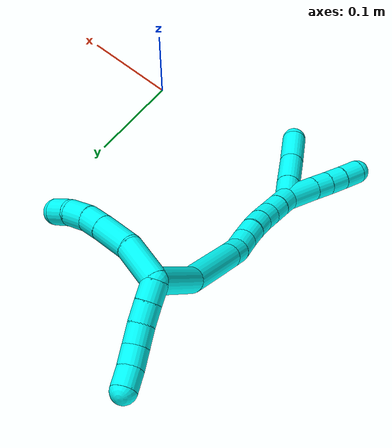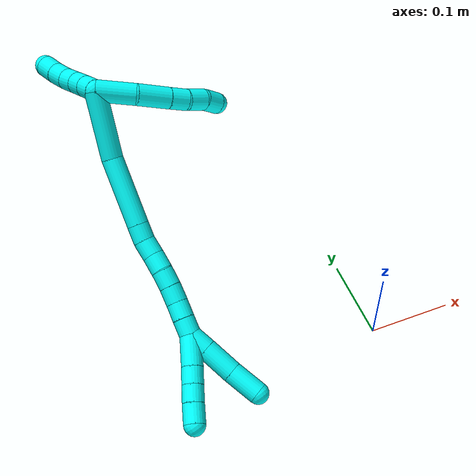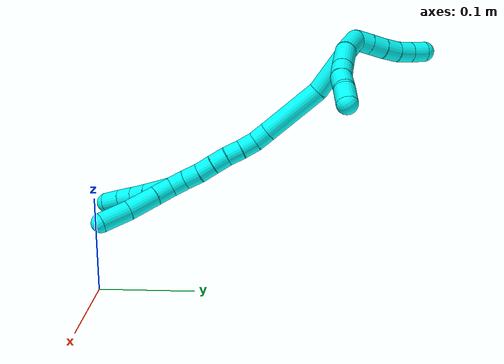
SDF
<sdf version="1.7">
 <world name="default">
  <model name="3">
   <static>0</static>
   <link name="3">
    <collision name="collision-cylinder-e_1_2_8">
     <pose>0.008054 0.016018 -0.013843 -2.28349 0.363534 -0.764048</pose>
     <geometry><cylinder><radius>0.0125</radius><length>0.045303</length></cylinder></geometry>
     <surface>
      <friction><ode><mu>1.16</mu><mu2>1.16</mu2><slip1>0</slip1><slip2>0</slip2></ode></friction>
      <contact><ode><kp>1e+06</kp><kd>1</kd><max_vel>0</max_vel><min_depth>0.001</min_depth></ode></contact>
     </surface>
    </collision>
    <visual name="visual-cylinder-e_1_2_8">
     <pose>0.008054 0.016018 -0.013843 -2.28349 0.363534 -0.764048</pose>
     <geometry><cylinder><radius>0.0125</radius><length>0.045303</length></cylinder></geometry>
     <material><ambient>0.003922 1 0.996078 1</ambient></material>
    </visual>
    <collision name="collision-cylinder-e_2_8_9">
     <pose>0.018873 0.048039 -0.03843 -2.16202 0.142433 -0.266045</pose>
     <geometry><cylinder><radius>0.0125</radius><length>0.038943</length></cylinder></geometry>
     <surface>
      <friction><ode><mu>1.16</mu><mu2>1.16</mu2><slip1>0</slip1><slip2>0</slip2></ode></friction>
      <contact><ode><kp>1e+06</kp><kd>1</kd><max_vel>0</max_vel><min_depth>0.001</min_depth></ode></contact>
     </surface>
    </collision>
    <visual name="visual-cylinder-e_2_8_9">
     <pose>0.018873 0.048039 -0.03843 -2.16202 0.142433 -0.266045</pose>
     <geometry><cylinder><radius>0.0125</radius><length>0.038943</length></cylinder></geometry>
     <material><ambient>0.003922 1 0.996078 1</ambient></material>
    </visual>
    <collision name="collision-cylinder-e_3_9_10">
     <pose>0.02296 0.073054 -0.054865 -2.1341 0.123531 -0.223472</pose>
     <geometry><cylinder><radius>0.0125</radius><length>0.021482</length></cylinder></geometry>
     <surface>
      <friction><ode><mu>1.16</mu><mu2>1.16</mu2><slip1>0</slip1><slip2>0</slip2></ode></friction>
      <contact><ode><kp>1e+06</kp><kd>1</kd><max_vel>0</max_vel><min_depth>0.001</min_depth></ode></contact>
     </surface>
    </collision>
    <visual name="visual-cylinder-e_3_9_10">
     <pose>0.02296 0.073054 -0.054865 -2.1341 0.123531 -0.223472</pose>
     <geometry><cylinder><radius>0.0125</radius><length>0.021482</length></cylinder></geometry>
     <material><ambient>0.003922 1 0.996078 1</ambient></material>
    </visual>
    <collision name="collision-cylinder-e_4_10_11">
     <pose>0.024489 0.092561 -0.064796 -1.95474 0.018099 -0.026831</pose>
     <geometry><cylinder><radius>0.0125</radius><length>0.022641</length></cylinder></geometry>
     <surface>
      <friction><ode><mu>1.16</mu><mu2>1.16</mu2><slip1>0</slip1><slip2>0</slip2></ode></friction>
      <contact><ode><kp>1e+06</kp><kd>1</kd><max_vel>0</max_vel><min_depth>0.001</min_depth></ode></contact>
     </surface>
    </collision>
    <visual name="visual-cylinder-e_4_10_11">
     <pose>0.024489 0.092561 -0.064796 -1.95474 0.018099 -0.026831</pose>
     <geometry><cylinder><radius>0.0125</radius><length>0.022641</length></cylinder></geometry>
     <material><ambient>0.003922 1 0.996078 1</ambient></material>
    </visual>
    <collision name="collision-cylinder-e_5_11_6">
     <pose>0.022015 0.112337 -0.0739 -2.05356 -0.250281 0.410084</pose>
     <geometry><cylinder><radius>0.0125</radius><length>0.02163</length></cylinder></geometry>
     <surface>
      <friction><ode><mu>1.16</mu><mu2>1.16</mu2><slip1>0</slip1><slip2>0</slip2></ode></friction>
      <contact><ode><kp>1e+06</kp><kd>1</kd><max_vel>0</max_vel><min_depth>0.001</min_depth></ode></contact>
     </surface>
    </collision>
    <visual name="visual-cylinder-e_5_11_6">
     <pose>0.022015 0.112337 -0.0739 -2.05356 -0.250281 0.410084</pose>
     <geometry><cylinder><radius>0.0125</radius><length>0.02163</length></cylinder></geometry>
     <material><ambient>0.003922 1 0.996078 1</ambient></material>
    </visual>
    <collision name="collision-cylinder-e_1_2_12">
     <pose>-0.007421 0.001773 0.006464 -0.267683 -0.836156 0.119496</pose>
     <geometry><cylinder><radius>0.0125</radius><length>0.02</length></cylinder></geometry>
     <surface>
      <friction><ode><mu>1.16</mu><mu2>1.16</mu2><slip1>0</slip1><slip2>0</slip2></ode></friction>
      <contact><ode><kp>1e+06</kp><kd>1</kd><max_vel>0</max_vel><min_depth>0.001</min_depth></ode></contact>
     </surface>
    </collision>
    <visual name="visual-cylinder-e_1_2_12">
     <pose>-0.007421 0.001773 0.006464 -0.267683 -0.836156 0.119496</pose>
     <geometry><cylinder><radius>0.0125</radius><length>0.02</length></cylinder></geometry>
     <material><ambient>0.003922 1 0.996078 1</ambient></material>
    </visual>
    <collision name="collision-cylinder-e_2_12_13">
     <pose>-0.022366 0.005166 0.019313 -0.248456 -0.851759 0.113173</pose>
     <geometry><cylinder><radius>0.0125</radius><length>0.02</length></cylinder></geometry>
     <surface>
      <friction><ode><mu>1.16</mu><mu2>1.16</mu2><slip1>0</slip1><slip2>0</slip2></ode></friction>
      <contact><ode><kp>1e+06</kp><kd>1</kd><max_vel>0</max_vel><min_depth>0.001</min_depth></ode></contact>
     </surface>
    </collision>
    <visual name="visual-cylinder-e_2_12_13">
     <pose>-0.022366 0.005166 0.019313 -0.248456 -0.851759 0.113173</pose>
     <geometry><cylinder><radius>0.0125</radius><length>0.02</length></cylinder></geometry>
     <material><ambient>0.003922 1 0.996078 1</ambient></material>
    </visual>
    <collision name="collision-cylinder-e_3_13_14">
     <pose>-0.037202 0.007633 0.032467 -0.124632 -0.820062 0.054231</pose>
     <geometry><cylinder><radius>0.0125</radius><length>0.02</length></cylinder></geometry>
     <surface>
      <friction><ode><mu>1.16</mu><mu2>1.16</mu2><slip1>0</slip1><slip2>0</slip2></ode></friction>
      <contact><ode><kp>1e+06</kp><kd>1</kd><max_vel>0</max_vel><min_depth>0.001</min_depth></ode></contact>
     </surface>
    </collision>
    <visual name="visual-cylinder-e_3_13_14">
     <pose>-0.037202 0.007633 0.032467 -0.124632 -0.820062 0.054231</pose>
     <geometry><cylinder><radius>0.0125</radius><length>0.02</length></cylinder></geometry>
     <material><ambient>0.003922 1 0.996078 1</ambient></material>
    </visual>
    <collision name="collision-cylinder-e_4_14_15">
     <pose>-0.050663 0.008745 0.047117 -0.033412 -0.662266 0.011488</pose>
     <geometry><cylinder><radius>0.0125</radius><length>0.02</length></cylinder></geometry>
     <surface>
      <friction><ode><mu>1.16</mu><mu2>1.16</mu2><slip1>0</slip1><slip2>0</slip2></ode></friction>
      <contact><ode><kp>1e+06</kp><kd>1</kd><max_vel>0</max_vel><min_depth>0.001</min_depth></ode></contact>
     </surface>
    </collision>
    <visual name="visual-cylinder-e_4_14_15">
     <pose>-0.050663 0.008745 0.047117 -0.033412 -0.662266 0.011488</pose>
     <geometry><cylinder><radius>0.0125</radius><length>0.02</length></cylinder></geometry>
     <material><ambient>0.003922 1 0.996078 1</ambient></material>
    </visual>
    <collision name="collision-cylinder-e_5_15_5">
     <pose>-0.062304 0.009572 0.063336 -0.067501 -0.581411 0.020202</pose>
     <geometry><cylinder><radius>0.0125</radius><length>0.02</length></cylinder></geometry>
     <surface>
      <friction><ode><mu>1.16</mu><mu2>1.16</mu2><slip1>0</slip1><slip2>0</slip2></ode></friction>
      <contact><ode><kp>1e+06</kp><kd>1</kd><max_vel>0</max_vel><min_depth>0.001</min_depth></ode></contact>
     </surface>
    </collision>
    <visual name="visual-cylinder-e_5_15_5">
     <pose>-0.062304 0.009572 0.063336 -0.067501 -0.581411 0.020202</pose>
     <geometry><cylinder><radius>0.0125</radius><length>0.02</length></cylinder></geometry>
     <material><ambient>0.003922 1 0.996078 1</ambient></material>
    </visual>
    <collision name="collision-cylinder-e_1_2_16">
     <pose>-0.017835 -0.004484 -0.034559 3.01255 -0.473033 -2.61779</pose>
     <geometry><cylinder><radius>0.0125</radius><length>0.078295</length></cylinder></geometry>
     <surface>
      <friction><ode><mu>1.16</mu><mu2>1.16</mu2><slip1>0</slip1><slip2>0</slip2></ode></friction>
      <contact><ode><kp>1e+06</kp><kd>1</kd><max_vel>0</max_vel><min_depth>0.001</min_depth></ode></contact>
     </surface>
    </collision>
    <visual name="visual-cylinder-e_1_2_16">
     <pose>-0.017835 -0.004484 -0.034559 3.01255 -0.473033 -2.61779</pose>
     <geometry><cylinder><radius>0.0125</radius><length>0.078295</length></cylinder></geometry>
     <material><ambient>0.003922 1 0.996078 1</ambient></material>
    </visual>
    <collision name="collision-cylinder-e_2_16_17">
     <pose>-0.04311 -0.015358 -0.108378 2.98027 -0.184913 -1.70756</pose>
     <geometry><cylinder><radius>0.0125</radius><length>0.080933</length></cylinder></geometry>
     <surface>
      <friction><ode><mu>1.16</mu><mu2>1.16</mu2><slip1>0</slip1><slip2>0</slip2></ode></friction>
      <contact><ode><kp>1e+06</kp><kd>1</kd><max_vel>0</max_vel><min_depth>0.001</min_depth></ode></contact>
     </surface>
    </collision>
    <visual name="visual-cylinder-e_2_16_17">
     <pose>-0.04311 -0.015358 -0.108378 2.98027 -0.184913 -1.70756</pose>
     <geometry><cylinder><radius>0.0125</radius><length>0.080933</length></cylinder></geometry>
     <material><ambient>0.003922 1 0.996078 1</ambient></material>
    </visual>
    <collision name="collision-cylinder-e_3_17_18">
     <pose>-0.052283 -0.023305 -0.157405 2.9834 -0.173421 -1.66298</pose>
     <geometry><cylinder><radius>0.0125</radius><length>0.020081</length></cylinder></geometry>
     <surface>
      <friction><ode><mu>1.16</mu><mu2>1.16</mu2><slip1>0</slip1><slip2>0</slip2></ode></friction>
      <contact><ode><kp>1e+06</kp><kd>1</kd><max_vel>0</max_vel><min_depth>0.001</min_depth></ode></contact>
     </surface>
    </collision>
    <visual name="visual-cylinder-e_3_17_18">
     <pose>-0.052283 -0.023305 -0.157405 2.9834 -0.173421 -1.66298</pose>
     <geometry><cylinder><radius>0.0125</radius><length>0.020081</length></cylinder></geometry>
     <material><ambient>0.003922 1 0.996078 1</ambient></material>
    </visual>
    <collision name="collision-cylinder-e_4_18_19">
     <pose>-0.053418 -0.025858 -0.17723 3.04291 0.059036 1.07781</pose>
     <geometry><cylinder><radius>0.0125</radius><length>0.020252</length></cylinder></geometry>
     <surface>
      <friction><ode><mu>1.16</mu><mu2>1.16</mu2><slip1>0</slip1><slip2>0</slip2></ode></friction>
      <contact><ode><kp>1e+06</kp><kd>1</kd><max_vel>0</max_vel><min_depth>0.001</min_depth></ode></contact>
     </surface>
    </collision>
    <visual name="visual-cylinder-e_4_18_19">
     <pose>-0.053418 -0.025858 -0.17723 3.04291 0.059036 1.07781</pose>
     <geometry><cylinder><radius>0.0125</radius><length>0.020252</length></cylinder></geometry>
     <material><ambient>0.003922 1 0.996078 1</ambient></material>
    </visual>
    <collision name="collision-cylinder-e_5_19_20">
     <pose>-0.051835 -0.028482 -0.197149 2.97802 0.098348 1.08143</pose>
     <geometry><cylinder><radius>0.0125</radius><length>0.020082</length></cylinder></geometry>
     <surface>
      <friction><ode><mu>1.16</mu><mu2>1.16</mu2><slip1>0</slip1><slip2>0</slip2></ode></friction>
      <contact><ode><kp>1e+06</kp><kd>1</kd><max_vel>0</max_vel><min_depth>0.001</min_depth></ode></contact>
     </surface>
    </collision>
    <visual name="visual-cylinder-e_5_19_20">
     <pose>-0.051835 -0.028482 -0.197149 2.97802 0.098348 1.08143</pose>
     <geometry><cylinder><radius>0.0125</radius><length>0.020082</length></cylinder></geometry>
     <material><ambient>0.003922 1 0.996078 1</ambient></material>
    </visual>
    <collision name="collision-cylinder-e_6_20_21">
     <pose>-0.050965 -0.031586 -0.216967 2.99431 -0.011533 -0.156013</pose>
     <geometry><cylinder><radius>0.0125</radius><length>0.020137</length></cylinder></geometry>
     <surface>
      <friction><ode><mu>1.16</mu><mu2>1.16</mu2><slip1>0</slip1><slip2>0</slip2></ode></friction>
      <contact><ode><kp>1e+06</kp><kd>1</kd><max_vel>0</max_vel><min_depth>0.001</min_depth></ode></contact>
     </surface>
    </collision>
    <visual name="visual-cylinder-e_6_20_21">
     <pose>-0.050965 -0.031586 -0.216967 2.99431 -0.011533 -0.156013</pose>
     <geometry><cylinder><radius>0.0125</radius><length>0.020137</length></cylinder></geometry>
     <material><ambient>0.003922 1 0.996078 1</ambient></material>
    </visual>
    <collision name="collision-cylinder-e_7_21_22">
     <pose>-0.051655 -0.035014 -0.236786 2.94631 -0.05705 -0.566893</pose>
     <geometry><cylinder><radius>0.0125</radius><length>0.020135</length></cylinder></geometry>
     <surface>
      <friction><ode><mu>1.16</mu><mu2>1.16</mu2><slip1>0</slip1><slip2>0</slip2></ode></friction>
      <contact><ode><kp>1e+06</kp><kd>1</kd><max_vel>0</max_vel><min_depth>0.001</min_depth></ode></contact>
     </surface>
    </collision>
    <visual name="visual-cylinder-e_7_21_22">
     <pose>-0.051655 -0.035014 -0.236786 2.94631 -0.05705 -0.566893</pose>
     <geometry><cylinder><radius>0.0125</radius><length>0.020135</length></cylinder></geometry>
     <material><ambient>0.003922 1 0.996078 1</ambient></material>
    </visual>
    <collision name="collision-cylinder-e_8_22_23">
     <pose>-0.051974 -0.039714 -0.25628 2.86359 0.025463 0.181518</pose>
     <geometry><cylinder><radius>0.0125</radius><length>0.020043</length></cylinder></geometry>
     <surface>
      <friction><ode><mu>1.16</mu><mu2>1.16</mu2><slip1>0</slip1><slip2>0</slip2></ode></friction>
      <contact><ode><kp>1e+06</kp><kd>1</kd><max_vel>0</max_vel><min_depth>0.001</min_depth></ode></contact>
     </surface>
    </collision>
    <visual name="visual-cylinder-e_8_22_23">
     <pose>-0.051974 -0.039714 -0.25628 2.86359 0.025463 0.181518</pose>
     <geometry><cylinder><radius>0.0125</radius><length>0.020043</length></cylinder></geometry>
     <material><ambient>0.003922 1 0.996078 1</ambient></material>
    </visual>
    <collision name="collision-cylinder-e_9_23_1">
     <pose>-0.051743 -0.044854 -0.275645 2.90063 -0.002416 -0.019958</pose>
     <geometry><cylinder><radius>0.0125</radius><length>0.020041</length></cylinder></geometry>
     <surface>
      <friction><ode><mu>1.16</mu><mu2>1.16</mu2><slip1>0</slip1><slip2>0</slip2></ode></friction>
      <contact><ode><kp>1e+06</kp><kd>1</kd><max_vel>0</max_vel><min_depth>0.001</min_depth></ode></contact>
     </surface>
    </collision>
    <visual name="visual-cylinder-e_9_23_1">
     <pose>-0.051743 -0.044854 -0.275645 2.90063 -0.002416 -0.019958</pose>
     <geometry><cylinder><radius>0.0125</radius><length>0.020041</length></cylinder></geometry>
     <material><ambient>0.003922 1 0.996078 1</ambient></material>
    </visual>
    <collision name="collision-cylinder-e_1_1_24">
     <pose>-0.048923 -0.045504 -0.296912 -2.99175 0.239122 -2.02467</pose>
     <geometry><cylinder><radius>0.0125</radius><length>0.024017</length></cylinder></geometry>
     <surface>
      <friction><ode><mu>1.16</mu><mu2>1.16</mu2><slip1>0</slip1><slip2>0</slip2></ode></friction>
      <contact><ode><kp>1e+06</kp><kd>1</kd><max_vel>0</max_vel><min_depth>0.001</min_depth></ode></contact>
     </surface>
    </collision>
    <visual name="visual-cylinder-e_1_1_24">
     <pose>-0.048923 -0.045504 -0.296912 -2.99175 0.239122 -2.02467</pose>
     <geometry><cylinder><radius>0.0125</radius><length>0.024017</length></cylinder></geometry>
     <material><ambient>0.003922 1 0.996078 1</ambient></material>
    </visual>
    <collision name="collision-cylinder-e_2_24_25">
     <pose>-0.041653 -0.041245 -0.327067 -3.00719 0.231353 -2.09162</pose>
     <geometry><cylinder><radius>0.0125</radius><length>0.038606</length></cylinder></geometry>
     <surface>
      <friction><ode><mu>1.16</mu><mu2>1.16</mu2><slip1>0</slip1><slip2>0</slip2></ode></friction>
      <contact><ode><kp>1e+06</kp><kd>1</kd><max_vel>0</max_vel><min_depth>0.001</min_depth></ode></contact>
     </surface>
    </collision>
    <visual name="visual-cylinder-e_2_24_25">
     <pose>-0.041653 -0.041245 -0.327067 -3.00719 0.231353 -2.09162</pose>
     <geometry><cylinder><radius>0.0125</radius><length>0.038606</length></cylinder></geometry>
     <material><ambient>0.003922 1 0.996078 1</ambient></material>
    </visual>
    <collision name="collision-cylinder-e_3_25_4">
     <pose>-0.031244 -0.036328 -0.363228 -3.00565 0.325874 -2.35638</pose>
     <geometry><cylinder><radius>0.0125</radius><length>0.037377</length></cylinder></geometry>
     <surface>
      <friction><ode><mu>1.16</mu><mu2>1.16</mu2><slip1>0</slip1><slip2>0</slip2></ode></friction>
      <contact><ode><kp>1e+06</kp><kd>1</kd><max_vel>0</max_vel><min_depth>0.001</min_depth></ode></contact>
     </surface>
    </collision>
    <visual name="visual-cylinder-e_3_25_4">
     <pose>-0.031244 -0.036328 -0.363228 -3.00565 0.325874 -2.35638</pose>
     <geometry><cylinder><radius>0.0125</radius><length>0.037377</length></cylinder></geometry>
     <material><ambient>0.003922 1 0.996078 1</ambient></material>
    </visual>
    <collision name="collision-cylinder-e_1_1_26">
     <pose>-0.05216 -0.05784 -0.300248 2.52263 -0.021477 -0.067144</pose>
     <geometry><cylinder><radius>0.0125</radius><length>0.036529</length></cylinder></geometry>
     <surface>
      <friction><ode><mu>1.16</mu><mu2>1.16</mu2><slip1>0</slip1><slip2>0</slip2></ode></friction>
      <contact><ode><kp>1e+06</kp><kd>1</kd><max_vel>0</max_vel><min_depth>0.001</min_depth></ode></contact>
     </surface>
    </collision>
    <visual name="visual-cylinder-e_1_1_26">
     <pose>-0.05216 -0.05784 -0.300248 2.52263 -0.021477 -0.067144</pose>
     <geometry><cylinder><radius>0.0125</radius><length>0.036529</length></cylinder></geometry>
     <material><ambient>0.003922 1 0.996078 1</ambient></material>
    </visual>
    <collision name="collision-cylinder-e_2_26_27">
     <pose>-0.052727 -0.074579 -0.323055 2.48268 -0.017484 -0.051125</pose>
     <geometry><cylinder><radius>0.0125</radius><length>0.020073</length></cylinder></geometry>
     <surface>
      <friction><ode><mu>1.16</mu><mu2>1.16</mu2><slip1>0</slip1><slip2>0</slip2></ode></friction>
      <contact><ode><kp>1e+06</kp><kd>1</kd><max_vel>0</max_vel><min_depth>0.001</min_depth></ode></contact>
     </surface>
    </collision>
    <visual name="visual-cylinder-e_2_26_27">
     <pose>-0.052727 -0.074579 -0.323055 2.48268 -0.017484 -0.051125</pose>
     <geometry><cylinder><radius>0.0125</radius><length>0.020073</length></cylinder></geometry>
     <material><ambient>0.003922 1 0.996078 1</ambient></material>
    </visual>
    <collision name="collision-cylinder-e_3_27_28">
     <pose>-0.052862 -0.086879 -0.338928 2.48198 0.004072 0.011896</pose>
     <geometry><cylinder><radius>0.0125</radius><length>0.020092</length></cylinder></geometry>
     <surface>
      <friction><ode><mu>1.16</mu><mu2>1.16</mu2><slip1>0</slip1><slip2>0</slip2></ode></friction>
      <contact><ode><kp>1e+06</kp><kd>1</kd><max_vel>0</max_vel><min_depth>0.001</min_depth></ode></contact>
     </surface>
    </collision>
    <visual name="visual-cylinder-e_3_27_28">
     <pose>-0.052862 -0.086879 -0.338928 2.48198 0.004072 0.011896</pose>
     <geometry><cylinder><radius>0.0125</radius><length>0.020092</length></cylinder></geometry>
     <material><ambient>0.003922 1 0.996078 1</ambient></material>
    </visual>
    <collision name="collision-cylinder-e_4_28_3">
     <pose>-0.05278 -0.099867 -0.356307 2.51514 0.003498 0.010801</pose>
     <geometry><cylinder><radius>0.0125</radius><length>0.023306</length></cylinder></geometry>
     <surface>
      <friction><ode><mu>1.16</mu><mu2>1.16</mu2><slip1>0</slip1><slip2>0</slip2></ode></friction>
      <contact><ode><kp>1e+06</kp><kd>1</kd><max_vel>0</max_vel><min_depth>0.001</min_depth></ode></contact>
     </surface>
    </collision>
    <visual name="visual-cylinder-e_4_28_3">
     <pose>-0.05278 -0.099867 -0.356307 2.51514 0.003498 0.010801</pose>
     <geometry><cylinder><radius>0.0125</radius><length>0.023306</length></cylinder></geometry>
     <material><ambient>0.003922 1 0.996078 1</ambient></material>
    </visual>
    <collision name="collision-sphere-3">
     <pose>-0.05274 -0.106699 -0.365747 0 -0 0</pose>
     <geometry><sphere><radius>0.0125</radius></sphere></geometry>
     <surface>
      <friction><ode><mu>1.16</mu><mu2>1.16</mu2><slip1>0</slip1><slip2>0</slip2></ode></friction>
      <contact><ode><kp>1e+06</kp><kd>1</kd><max_vel>0</max_vel><min_depth>0.001</min_depth></ode></contact>
     </surface>
    </collision>
    <visual name="visual-sphere-3">
     <pose>-0.05274 -0.106699 -0.365747 0 -0 0</pose>
     <geometry><sphere><radius>0.0125</radius></sphere></geometry>
     <material><ambient>0.003922 1 0.996078 1</ambient></material>
    </visual>
    <collision name="collision-sphere-28">
     <pose>-0.052821 -0.093035 -0.346867 0 -0 0</pose>
     <geometry><sphere><radius>0.0125</radius></sphere></geometry>
     <surface>
      <friction><ode><mu>1.16</mu><mu2>1.16</mu2><slip1>0</slip1><slip2>0</slip2></ode></friction>
      <contact><ode><kp>1e+06</kp><kd>1</kd><max_vel>0</max_vel><min_depth>0.001</min_depth></ode></contact>
     </surface>
    </collision>
    <visual name="visual-sphere-28">
     <pose>-0.052821 -0.093035 -0.346867 0 -0 0</pose>
     <geometry><sphere><radius>0.0125</radius></sphere></geometry>
     <material><ambient>0.003922 1 0.996078 1</ambient></material>
    </visual>
    <collision name="collision-sphere-27">
     <pose>-0.052903 -0.080723 -0.33099 0 -0 0</pose>
     <geometry><sphere><radius>0.0125</radius></sphere></geometry>
     <surface>
      <friction><ode><mu>1.16</mu><mu2>1.16</mu2><slip1>0</slip1><slip2>0</slip2></ode></friction>
      <contact><ode><kp>1e+06</kp><kd>1</kd><max_vel>0</max_vel><min_depth>0.001</min_depth></ode></contact>
     </surface>
    </collision>
    <visual name="visual-sphere-27">
     <pose>-0.052903 -0.080723 -0.33099 0 -0 0</pose>
     <geometry><sphere><radius>0.0125</radius></sphere></geometry>
     <material><ambient>0.003922 1 0.996078 1</ambient></material>
    </visual>
    <collision name="collision-sphere-26">
     <pose>-0.052552 -0.068435 -0.315121 0 -0 0</pose>
     <geometry><sphere><radius>0.0125</radius></sphere></geometry>
     <surface>
      <friction><ode><mu>1.16</mu><mu2>1.16</mu2><slip1>0</slip1><slip2>0</slip2></ode></friction>
      <contact><ode><kp>1e+06</kp><kd>1</kd><max_vel>0</max_vel><min_depth>0.001</min_depth></ode></contact>
     </surface>
    </collision>
    <visual name="visual-sphere-26">
     <pose>-0.052552 -0.068435 -0.315121 0 -0 0</pose>
     <geometry><sphere><radius>0.0125</radius></sphere></geometry>
     <material><ambient>0.003922 1 0.996078 1</ambient></material>
    </visual>
    <collision name="collision-sphere-4">
     <pose>-0.025261 -0.033928 -0.38077 0 -0 0</pose>
     <geometry><sphere><radius>0.0125</radius></sphere></geometry>
     <surface>
      <friction><ode><mu>1.16</mu><mu2>1.16</mu2><slip1>0</slip1><slip2>0</slip2></ode></friction>
      <contact><ode><kp>1e+06</kp><kd>1</kd><max_vel>0</max_vel><min_depth>0.001</min_depth></ode></contact>
     </surface>
    </collision>
    <visual name="visual-sphere-4">
     <pose>-0.025261 -0.033928 -0.38077 0 -0 0</pose>
     <geometry><sphere><radius>0.0125</radius></sphere></geometry>
     <material><ambient>0.003922 1 0.996078 1</ambient></material>
    </visual>
    <collision name="collision-sphere-25">
     <pose>-0.037227 -0.038727 -0.345687 0 -0 0</pose>
     <geometry><sphere><radius>0.0125</radius></sphere></geometry>
     <surface>
      <friction><ode><mu>1.16</mu><mu2>1.16</mu2><slip1>0</slip1><slip2>0</slip2></ode></friction>
      <contact><ode><kp>1e+06</kp><kd>1</kd><max_vel>0</max_vel><min_depth>0.001</min_depth></ode></contact>
     </surface>
    </collision>
    <visual name="visual-sphere-25">
     <pose>-0.037227 -0.038727 -0.345687 0 -0 0</pose>
     <geometry><sphere><radius>0.0125</radius></sphere></geometry>
     <material><ambient>0.003922 1 0.996078 1</ambient></material>
    </visual>
    <collision name="collision-sphere-24">
     <pose>-0.046079 -0.043762 -0.308448 0 -0 0</pose>
     <geometry><sphere><radius>0.0125</radius></sphere></geometry>
     <surface>
      <friction><ode><mu>1.16</mu><mu2>1.16</mu2><slip1>0</slip1><slip2>0</slip2></ode></friction>
      <contact><ode><kp>1e+06</kp><kd>1</kd><max_vel>0</max_vel><min_depth>0.001</min_depth></ode></contact>
     </surface>
    </collision>
    <visual name="visual-sphere-24">
     <pose>-0.046079 -0.043762 -0.308448 0 -0 0</pose>
     <geometry><sphere><radius>0.0125</radius></sphere></geometry>
     <material><ambient>0.003922 1 0.996078 1</ambient></material>
    </visual>
    <collision name="collision-sphere-1">
     <pose>-0.051767 -0.047246 -0.285376 0 -0 0</pose>
     <geometry><sphere><radius>0.0125</radius></sphere></geometry>
     <surface>
      <friction><ode><mu>1.16</mu><mu2>1.16</mu2><slip1>0</slip1><slip2>0</slip2></ode></friction>
      <contact><ode><kp>1e+06</kp><kd>1</kd><max_vel>0</max_vel><min_depth>0.001</min_depth></ode></contact>
     </surface>
    </collision>
    <visual name="visual-sphere-1">
     <pose>-0.051767 -0.047246 -0.285376 0 -0 0</pose>
     <geometry><sphere><radius>0.0125</radius></sphere></geometry>
     <material><ambient>0.003922 1 0.996078 1</ambient></material>
    </visual>
    <collision name="collision-sphere-23">
     <pose>-0.051719 -0.042463 -0.265913 0 -0 0</pose>
     <geometry><sphere><radius>0.0125</radius></sphere></geometry>
     <surface>
      <friction><ode><mu>1.16</mu><mu2>1.16</mu2><slip1>0</slip1><slip2>0</slip2></ode></friction>
      <contact><ode><kp>1e+06</kp><kd>1</kd><max_vel>0</max_vel><min_depth>0.001</min_depth></ode></contact>
     </surface>
    </collision>
    <visual name="visual-sphere-23">
     <pose>-0.051719 -0.042463 -0.265913 0 -0 0</pose>
     <geometry><sphere><radius>0.0125</radius></sphere></geometry>
     <material><ambient>0.003922 1 0.996078 1</ambient></material>
    </visual>
    <collision name="collision-sphere-22">
     <pose>-0.052229 -0.036964 -0.246646 0 -0 0</pose>
     <geometry><sphere><radius>0.0125</radius></sphere></geometry>
     <surface>
      <friction><ode><mu>1.16</mu><mu2>1.16</mu2><slip1>0</slip1><slip2>0</slip2></ode></friction>
      <contact><ode><kp>1e+06</kp><kd>1</kd><max_vel>0</max_vel><min_depth>0.001</min_depth></ode></contact>
     </surface>
    </collision>
    <visual name="visual-sphere-22">
     <pose>-0.052229 -0.036964 -0.246646 0 -0 0</pose>
     <geometry><sphere><radius>0.0125</radius></sphere></geometry>
     <material><ambient>0.003922 1 0.996078 1</ambient></material>
    </visual>
    <collision name="collision-sphere-21">
     <pose>-0.051081 -0.033064 -0.226926 0 -0 0</pose>
     <geometry><sphere><radius>0.0125</radius></sphere></geometry>
     <surface>
      <friction><ode><mu>1.16</mu><mu2>1.16</mu2><slip1>0</slip1><slip2>0</slip2></ode></friction>
      <contact><ode><kp>1e+06</kp><kd>1</kd><max_vel>0</max_vel><min_depth>0.001</min_depth></ode></contact>
     </surface>
    </collision>
    <visual name="visual-sphere-21">
     <pose>-0.051081 -0.033064 -0.226926 0 -0 0</pose>
     <geometry><sphere><radius>0.0125</radius></sphere></geometry>
     <material><ambient>0.003922 1 0.996078 1</ambient></material>
    </visual>
    <collision name="collision-sphere-6">
     <pose>0.019336 0.121617 -0.078765 0 -0 0</pose>
     <geometry><sphere><radius>0.0125</radius></sphere></geometry>
     <surface>
      <friction><ode><mu>1.16</mu><mu2>1.16</mu2><slip1>0</slip1><slip2>0</slip2></ode></friction>
      <contact><ode><kp>1e+06</kp><kd>1</kd><max_vel>0</max_vel><min_depth>0.001</min_depth></ode></contact>
     </surface>
    </collision>
    <visual name="visual-sphere-6">
     <pose>0.019336 0.121617 -0.078765 0 -0 0</pose>
     <geometry><sphere><radius>0.0125</radius></sphere></geometry>
     <material><ambient>0.003922 1 0.996078 1</ambient></material>
    </visual>
    <collision name="collision-sphere-11">
     <pose>0.024694 0.103056 -0.069036 0 -0 0</pose>
     <geometry><sphere><radius>0.0125</radius></sphere></geometry>
     <surface>
      <friction><ode><mu>1.16</mu><mu2>1.16</mu2><slip1>0</slip1><slip2>0</slip2></ode></friction>
      <contact><ode><kp>1e+06</kp><kd>1</kd><max_vel>0</max_vel><min_depth>0.001</min_depth></ode></contact>
     </surface>
    </collision>
    <visual name="visual-sphere-11">
     <pose>0.024694 0.103056 -0.069036 0 -0 0</pose>
     <geometry><sphere><radius>0.0125</radius></sphere></geometry>
     <material><ambient>0.003922 1 0.996078 1</ambient></material>
    </visual>
    <collision name="collision-sphere-10">
     <pose>0.024284 0.082067 -0.060557 0 -0 0</pose>
     <geometry><sphere><radius>0.0125</radius></sphere></geometry>
     <surface>
      <friction><ode><mu>1.16</mu><mu2>1.16</mu2><slip1>0</slip1><slip2>0</slip2></ode></friction>
      <contact><ode><kp>1e+06</kp><kd>1</kd><max_vel>0</max_vel><min_depth>0.001</min_depth></ode></contact>
     </surface>
    </collision>
    <visual name="visual-sphere-10">
     <pose>0.024284 0.082067 -0.060557 0 -0 0</pose>
     <geometry><sphere><radius>0.0125</radius></sphere></geometry>
     <material><ambient>0.003922 1 0.996078 1</ambient></material>
    </visual>
    <collision name="collision-sphere-9">
     <pose>0.021637 0.064042 -0.049173 0 -0 0</pose>
     <geometry><sphere><radius>0.0125</radius></sphere></geometry>
     <surface>
      <friction><ode><mu>1.16</mu><mu2>1.16</mu2><slip1>0</slip1><slip2>0</slip2></ode></friction>
      <contact><ode><kp>1e+06</kp><kd>1</kd><max_vel>0</max_vel><min_depth>0.001</min_depth></ode></contact>
     </surface>
    </collision>
    <visual name="visual-sphere-9">
     <pose>0.021637 0.064042 -0.049173 0 -0 0</pose>
     <geometry><sphere><radius>0.0125</radius></sphere></geometry>
     <material><ambient>0.003922 1 0.996078 1</ambient></material>
    </visual>
    <collision name="collision-sphere-2">
     <geometry><sphere><radius>0.0125</radius></sphere></geometry>
     <surface>
      <friction><ode><mu>1.16</mu><mu2>1.16</mu2><slip1>0</slip1><slip2>0</slip2></ode></friction>
      <contact><ode><kp>1e+06</kp><kd>1</kd><max_vel>0</max_vel><min_depth>0.001</min_depth></ode></contact>
     </surface>
    </collision>
    <visual name="visual-sphere-2">
     <geometry><sphere><radius>0.0125</radius></sphere></geometry>
     <material><ambient>0.003922 1 0.996078 1</ambient></material>
    </visual>
    <collision name="collision-sphere-19">
     <pose>-0.052821 -0.026854 -0.187289 0 -0 0</pose>
     <geometry><sphere><radius>0.0125</radius></sphere></geometry>
     <surface>
      <friction><ode><mu>1.16</mu><mu2>1.16</mu2><slip1>0</slip1><slip2>0</slip2></ode></friction>
      <contact><ode><kp>1e+06</kp><kd>1</kd><max_vel>0</max_vel><min_depth>0.001</min_depth></ode></contact>
     </surface>
    </collision>
    <visual name="visual-sphere-19">
     <pose>-0.052821 -0.026854 -0.187289 0 -0 0</pose>
     <geometry><sphere><radius>0.0125</radius></sphere></geometry>
     <material><ambient>0.003922 1 0.996078 1</ambient></material>
    </visual>
    <collision name="collision-sphere-8">
     <pose>0.016109 0.032036 -0.027687 0 -0 0</pose>
     <geometry><sphere><radius>0.0125</radius></sphere></geometry>
     <surface>
      <friction><ode><mu>1.16</mu><mu2>1.16</mu2><slip1>0</slip1><slip2>0</slip2></ode></friction>
      <contact><ode><kp>1e+06</kp><kd>1</kd><max_vel>0</max_vel><min_depth>0.001</min_depth></ode></contact>
     </surface>
    </collision>
    <visual name="visual-sphere-8">
     <pose>0.016109 0.032036 -0.027687 0 -0 0</pose>
     <geometry><sphere><radius>0.0125</radius></sphere></geometry>
     <material><ambient>0.003922 1 0.996078 1</ambient></material>
    </visual>
    <collision name="collision-sphere-12">
     <pose>-0.014841 0.003546 0.012929 0 -0 0</pose>
     <geometry><sphere><radius>0.0125</radius></sphere></geometry>
     <surface>
      <friction><ode><mu>1.16</mu><mu2>1.16</mu2><slip1>0</slip1><slip2>0</slip2></ode></friction>
      <contact><ode><kp>1e+06</kp><kd>1</kd><max_vel>0</max_vel><min_depth>0.001</min_depth></ode></contact>
     </surface>
    </collision>
    <visual name="visual-sphere-12">
     <pose>-0.014841 0.003546 0.012929 0 -0 0</pose>
     <geometry><sphere><radius>0.0125</radius></sphere></geometry>
     <material><ambient>0.003922 1 0.996078 1</ambient></material>
    </visual>
    <collision name="collision-sphere-13">
     <pose>-0.02989 0.006785 0.025698 0 -0 0</pose>
     <geometry><sphere><radius>0.0125</radius></sphere></geometry>
     <surface>
      <friction><ode><mu>1.16</mu><mu2>1.16</mu2><slip1>0</slip1><slip2>0</slip2></ode></friction>
      <contact><ode><kp>1e+06</kp><kd>1</kd><max_vel>0</max_vel><min_depth>0.001</min_depth></ode></contact>
     </surface>
    </collision>
    <visual name="visual-sphere-13">
     <pose>-0.02989 0.006785 0.025698 0 -0 0</pose>
     <geometry><sphere><radius>0.0125</radius></sphere></geometry>
     <material><ambient>0.003922 1 0.996078 1</ambient></material>
    </visual>
    <collision name="collision-sphere-14">
     <pose>-0.044514 0.008481 0.039235 0 -0 0</pose>
     <geometry><sphere><radius>0.0125</radius></sphere></geometry>
     <surface>
      <friction><ode><mu>1.16</mu><mu2>1.16</mu2><slip1>0</slip1><slip2>0</slip2></ode></friction>
      <contact><ode><kp>1e+06</kp><kd>1</kd><max_vel>0</max_vel><min_depth>0.001</min_depth></ode></contact>
     </surface>
    </collision>
    <visual name="visual-sphere-14">
     <pose>-0.044514 0.008481 0.039235 0 -0 0</pose>
     <geometry><sphere><radius>0.0125</radius></sphere></geometry>
     <material><ambient>0.003922 1 0.996078 1</ambient></material>
    </visual>
    <collision name="collision-sphere-15">
     <pose>-0.056812 0.009008 0.054999 0 -0 0</pose>
     <geometry><sphere><radius>0.0125</radius></sphere></geometry>
     <surface>
      <friction><ode><mu>1.16</mu><mu2>1.16</mu2><slip1>0</slip1><slip2>0</slip2></ode></friction>
      <contact><ode><kp>1e+06</kp><kd>1</kd><max_vel>0</max_vel><min_depth>0.001</min_depth></ode></contact>
     </surface>
    </collision>
    <visual name="visual-sphere-15">
     <pose>-0.056812 0.009008 0.054999 0 -0 0</pose>
     <geometry><sphere><radius>0.0125</radius></sphere></geometry>
     <material><ambient>0.003922 1 0.996078 1</ambient></material>
    </visual>
    <collision name="collision-sphere-5">
     <pose>-0.067796 0.010136 0.071674 0 -0 0</pose>
     <geometry><sphere><radius>0.0125</radius></sphere></geometry>
     <surface>
      <friction><ode><mu>1.16</mu><mu2>1.16</mu2><slip1>0</slip1><slip2>0</slip2></ode></friction>
      <contact><ode><kp>1e+06</kp><kd>1</kd><max_vel>0</max_vel><min_depth>0.001</min_depth></ode></contact>
     </surface>
    </collision>
    <visual name="visual-sphere-5">
     <pose>-0.067796 0.010136 0.071674 0 -0 0</pose>
     <geometry><sphere><radius>0.0125</radius></sphere></geometry>
     <material><ambient>0.003922 1 0.996078 1</ambient></material>
    </visual>
    <collision name="collision-sphere-16">
     <pose>-0.03567 -0.008969 -0.069118 0 -0 0</pose>
     <geometry><sphere><radius>0.0125</radius></sphere></geometry>
     <surface>
      <friction><ode><mu>1.16</mu><mu2>1.16</mu2><slip1>0</slip1><slip2>0</slip2></ode></friction>
      <contact><ode><kp>1e+06</kp><kd>1</kd><max_vel>0</max_vel><min_depth>0.001</min_depth></ode></contact>
     </surface>
    </collision>
    <visual name="visual-sphere-16">
     <pose>-0.03567 -0.008969 -0.069118 0 -0 0</pose>
     <geometry><sphere><radius>0.0125</radius></sphere></geometry>
     <material><ambient>0.003922 1 0.996078 1</ambient></material>
    </visual>
    <collision name="collision-sphere-17">
     <pose>-0.050551 -0.021747 -0.147638 0 -0 0</pose>
     <geometry><sphere><radius>0.0125</radius></sphere></geometry>
     <surface>
      <friction><ode><mu>1.16</mu><mu2>1.16</mu2><slip1>0</slip1><slip2>0</slip2></ode></friction>
      <contact><ode><kp>1e+06</kp><kd>1</kd><max_vel>0</max_vel><min_depth>0.001</min_depth></ode></contact>
     </surface>
    </collision>
    <visual name="visual-sphere-17">
     <pose>-0.050551 -0.021747 -0.147638 0 -0 0</pose>
     <geometry><sphere><radius>0.0125</radius></sphere></geometry>
     <material><ambient>0.003922 1 0.996078 1</ambient></material>
    </visual>
    <collision name="collision-sphere-18">
     <pose>-0.054016 -0.024863 -0.167171 0 -0 0</pose>
     <geometry><sphere><radius>0.0125</radius></sphere></geometry>
     <surface>
      <friction><ode><mu>1.16</mu><mu2>1.16</mu2><slip1>0</slip1><slip2>0</slip2></ode></friction>
      <contact><ode><kp>1e+06</kp><kd>1</kd><max_vel>0</max_vel><min_depth>0.001</min_depth></ode></contact>
     </surface>
    </collision>
    <visual name="visual-sphere-18">
     <pose>-0.054016 -0.024863 -0.167171 0 -0 0</pose>
     <geometry><sphere><radius>0.0125</radius></sphere></geometry>
     <material><ambient>0.003922 1 0.996078 1</ambient></material>
    </visual>
    <collision name="collision-sphere-20">
     <pose>-0.050849 -0.030109 -0.207008 0 -0 0</pose>
     <geometry><sphere><radius>0.0125</radius></sphere></geometry>
     <surface>
      <friction><ode><mu>1.16</mu><mu2>1.16</mu2><slip1>0</slip1><slip2>0</slip2></ode></friction>
      <contact><ode><kp>1e+06</kp><kd>1</kd><max_vel>0</max_vel><min_depth>0.001</min_depth></ode></contact>
     </surface>
    </collision>
    <visual name="visual-sphere-20">
     <pose>-0.050849 -0.030109 -0.207008 0 -0 0</pose>
     <geometry><sphere><radius>0.0125</radius></sphere></geometry>
     <material><ambient>0.003922 1 0.996078 1</ambient></material>
    </visual>
    <inertial>
     <pose>-0.029847 -0.011427 -0.147838 0 -0 0</pose>
     <mass>0.75</mass>
     <inertia><ixx>-9.7e-05</ixx><ixy>0</ixy><ixz>0</ixz><iyy>-4.2e-05</iyy><iyz>0</iyz><izz>-1e-05</izz></inertia>
    </inertial>
   </link>
   <pose>-0.236532 0.272901 0.230451 -0.361278 -0.96878 -0.781311</pose>
  </model>
 </world>
</sdf>
